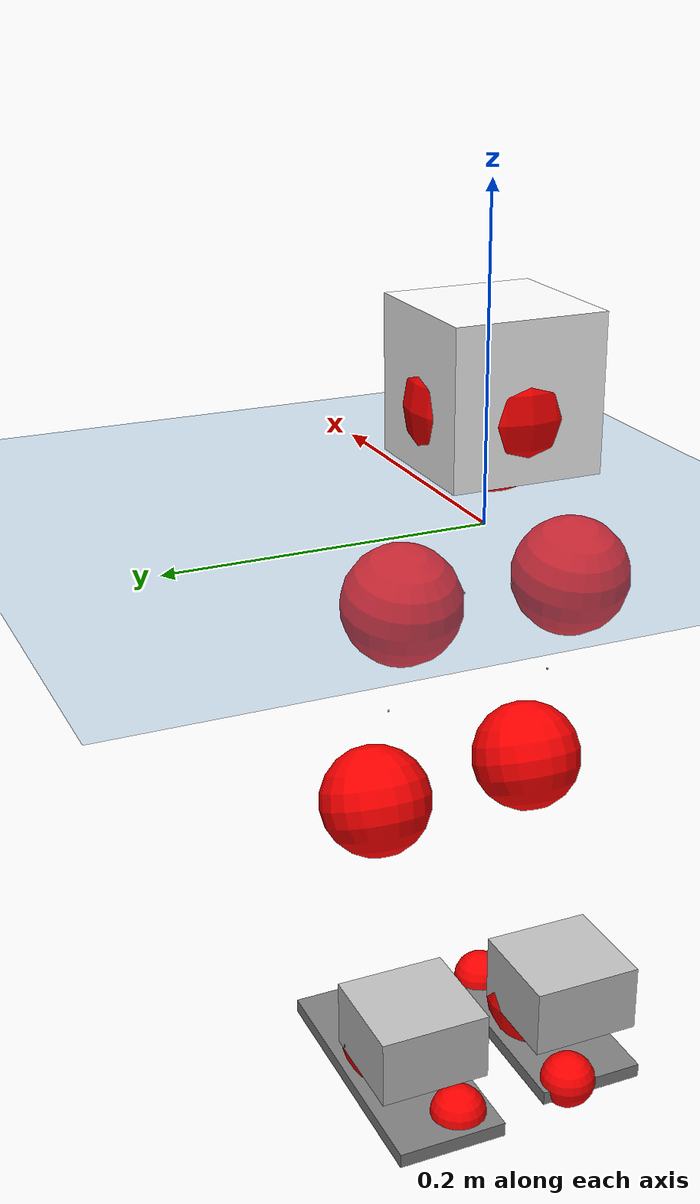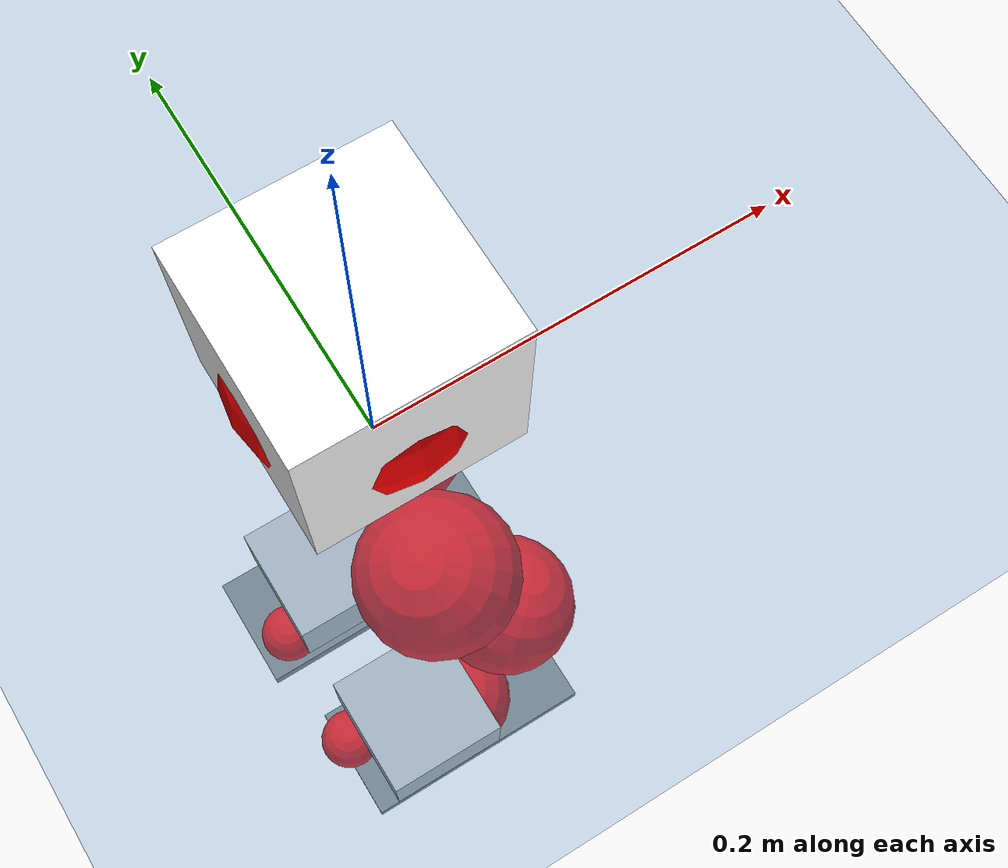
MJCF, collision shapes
<mujoco model="pi_12dof_release_v1">
  <compiler angle="radian" assetdir="assets" balanceinertia="true" inertiafromgeom="false"/>

  <option timestep="0.005" density="1.2" viscosity="2e-05"/>

  <size nkey="1"/>

  <visual>
    <quality shadowsize="8192"/>
    <map shadowclip="0.5"/>
  </visual>

  <default>
    <default class="/">
      <joint armature="0.01" damping="0.01" frictionloss="0.01"/>
      <geom contype="0" conaffinity="0" group="1" solref="-1000 -80"/>
      <site size="0.01 0.005 0.005" group="5"/>
      <general forcelimited="true" biastype="affine" gainprm="20" biasprm="0 -20 -0.5"/>
      <default class="foot">
        <geom size="0.0845 0.036 0.005" type="box" condim="6" group="4" priority="1" friction="0.9 0.2 0.2" solimp="0.015 1 0.005"/>
      </default>
      <default class="reward_collision_sphere">
        <geom group="5" rgba="1 0 0 1"/>
      </default>
    </default>
  </default>

  <asset>
    <texture type="skybox" colorspace="auto" name="//unnamed_texture_0" builtin="gradient" rgb1="0.95 0.95 0.95" rgb2="0.95 0.95 0.95" width="100" height="600"/>
    <texture type="2d" colorspace="auto" name="texplane" builtin="checker" rgb1="0.345 0.575 0.748" rgb2="0.345 0.575 0.748" markrgb="1 1 1" width="512" height="512"/>
    <material name="MatPlane" class="/" texture="texplane" texuniform="true" texrepeat="2 2" specular="0.9"/>
    <mesh name="baselink_1" class="/" file="baselink_1.STL"/>
    <mesh name="r_hip_pitch_link" class="/" file="r_hip_pitch_link.STL"/>
    <mesh name="r_hip_roll_link" class="/" file="r_hip_roll_link.STL"/>
    <mesh name="r_thigh_link" class="/" file="r_thigh_link.STL"/>
    <mesh name="r_calf_link" class="/" file="r_calf_link.STL"/>
    <mesh name="r_ankle_pitch_link" class="/" file="r_ankle_pitch_link.STL"/>
    <mesh name="r_ankle_roll_link" class="/" file="r_ankle_roll_link.STL"/>
    <mesh name="l_hip_pitch_link" class="/" file="l_hip_pitch_link.STL"/>
    <mesh name="l_hip_roll_link" class="/" file="l_hip_roll_link.STL"/>
    <mesh name="l_thigh_link" class="/" file="l_thigh_link.STL"/>
    <mesh name="l_calf_link" class="/" file="l_calf_link.STL"/>
    <mesh name="l_ankle_pitch_link" class="/" file="l_ankle_pitch_link.STL"/>
    <mesh name="l_ankle_roll_link" class="/" file="l_ankle_roll_link.STL"/>
  </asset>

  <worldbody>
    <geom name="floor" class="/" size="100 100 0.125" type="plane" group="0" material="MatPlane"/>
    <light name="toplight_shadow" class="/" pos="0 0 5" dir="0.0990148 0.0990148 -0.990148" type="directional" ambient="0.04 0.04 0.04" diffuse="0.55 0.55 0.55" specular="0.12 0.12 0.12"/>
    <light name="toplight_fill" class="/" pos="0 0 5" dir="0.0990148 0.0990148 -0.990148" type="directional" castshadow="false" ambient="0.04 0.04 0.04" diffuse="0.3 0.3 0.3" specular="0.08 0.08 0.08"/>
    <body name="trunk" pos="-0.0027709 -0.00105866 -0.00197592" quat="0.999999 -0.000454874 -0.00108348 -0.000528606">
      <inertial pos="9.70811e-05 0.00129564 0.0436103" quat="0.6946 0.0149533 -0.00349531 0.719233" mass="1.74256" diaginertia="0.00799013 0.00186968 0.00705014"/>
      <joint name="//unnamed_joint_0" type="free"/>
      <geom name="//unnamed_geom_1" class="/" type="mesh" density="0" rgba="1 1 1 1" mesh="baselink_1"/>
      <geom name="//unnamed_geom_2" class="/" size="0.0465553 0.0465553 0.0465553" pos="0 0 0.0885791" type="box" rgba="1 1 1 1"/>
      <geom name="//unnamed_geom_3" class="reward_collision_sphere" size="0.0512109" pos="0 0 0.0775067"/>
      <site name="imu" class="/" pos="0.0112541 -0.00864937 -0.00413679" size="0.00931107"/>
      <camera name="track" class="/" pos="0 -1.45975 0" quat="0.707107 0.707107 0 0" mode="trackcom"/>
      <camera name="ego_camera" class="/" pos="0.0717155 0 0.199303" quat="-0.5 -0.5 0.5 0.5"/>
      <body name="r_hip_pitch_link" pos="-0.00077098 -0.0166649 -0.037771" quat="0.992276 -0.000150216 -0.124044 -0.000684492">
        <inertial pos="-0.00121091 -0.0405971 0.000295899" quat="-0.0155785 0.697057 -0.033729 0.716053" mass="0.308168" diaginertia="8.9359e-05 2.09464e-05 0.000146012"/>
        <joint name="r_hip_pitch_joint" class="/" pos="0 0 0" axis="0.000334988 -1 -0.000277111" range="-1.74055 1.22895" armature="0.00830511" damping="0.005766" frictionloss="0.0093273"/>
        <geom name="//unnamed_geom_4" class="/" type="mesh" density="0" rgba="0.75294 0.75294 0.75294 1" mesh="r_hip_pitch_link"/>
        <geom name="//unnamed_geom_5" class="/" size="0.000465553 0.000465553 0.000465553" type="box" rgba="0.75294 0.75294 0.75294 1"/>
        <body name="r_hip_roll_link" pos="-0.00135722 -0.0401533 -0.000115428" quat="1 6.39468e-05 0.000303787 0.000114268">
          <inertial pos="-0.00141921 -0.00251252 -0.0692702" quat="0.706269 -0.0788511 -0.0823226 0.698705" mass="0.315912" diaginertia="0.00026289 5.57868e-05 0.000210689"/>
          <joint name="r_hip_roll_joint" class="/" pos="0 0 0" axis="-0.999909 -0.0092101 0.00984636" range="-0.142759 0.54846" armature="0.00963607" damping="0.00798194" frictionloss="0.00908137"/>
          <geom name="//unnamed_geom_6" class="/" type="mesh" density="0" rgba="0.75294 0.75294 0.75294 1" mesh="r_hip_roll_link"/>
          <geom name="//unnamed_geom_7" class="/" size="0.000465553 0.000465553 0.000465553" type="box" rgba="0.75294 0.75294 0.75294 1"/>
          <geom name="//unnamed_geom_8" class="reward_collision_sphere" size="0.0372443"/>
          <body name="r_thigh_link" pos="0.00116723 0.00238105 -0.0737291" quat="1 0.000321008 0.000325597 -2.03425e-05">
            <inertial pos="0.000408664 -0.00168974 -0.0498978" quat="0.737699 0.675128 0.000436091 0.00117244" mass="0.0943264" diaginertia="0.000103876 1.98382e-05 9.65595e-05"/>
            <joint name="r_thigh_joint" class="/" pos="0 0 0" axis="-0.0143426 -0.00529763 -0.999883" stiffness="0.00807025" range="-0.299626 0.615329" armature="0.00886988" damping="0" frictionloss="0.00852276"/>
            <geom name="//unnamed_geom_9" class="/" type="mesh" density="0" rgba="0.75294 0.75294 0.75294 1" mesh="r_thigh_link"/>
            <geom name="//unnamed_geom_10" class="/" size="0.000465553 0.000465553 0.000465553" type="box" rgba="0.75294 0.75294 0.75294 1"/>
            <body name="r_calf_link" pos="0.0025043 0.0012494 -0.075635" quat="0.947651 1.71901e-05 0.319308 -4.47178e-05">
              <inertial pos="-0.000624602 -0.00334874 -0.076998" quat="0.999937 0.00448618 -0.00940256 0.00425612" mass="0.67733" diaginertia="0.00282017 0.000757833 0.000295546"/>
              <joint name="r_calf_joint" class="/" pos="0 0 0" axis="-0.00366954 -0.999993 -0.000447214" range="-1.60061 0.645743" armature="0.00789066" damping="0.00345332" frictionloss="0.00914817"/>
              <geom name="//unnamed_geom_11" class="/" type="mesh" density="0" rgba="0.75294 0.75294 0.75294 1" mesh="r_calf_link"/>
              <geom name="//unnamed_geom_12" class="/" size="0.000465553 0.000465553 0.000465553" type="box" rgba="0.75294 0.75294 0.75294 1"/>
              <geom name="//unnamed_geom_13" class="reward_collision_sphere" size="0.0372443"/>
              <body name="r_ankle_pitch_link" pos="0.00242528 2.36895e-05 -0.157432" quat="0.980093 0.000104169 -0.198537 0.000250556">
                <inertial pos="0.00397646 0.00263805 -0.00239419" quat="-0.00549746 0.705787 -0.00340883 0.708394" mass="0.146743" diaginertia="0.000246493 4.72003e-05 0.000204845"/>
                <joint name="r_ankle_pitch_joint" class="/" pos="0 0 0" axis="-0.00325955 -0.999994 -0.00128159" range="-1.30134 0.540211" armature="0.00939044" damping="0.00720996" frictionloss="0.0105605"/>
                <geom name="//unnamed_geom_14" class="/" type="mesh" density="0" rgba="0.75294 0.75294 0.75294 1" mesh="r_ankle_pitch_link"/>
                <geom name="//unnamed_geom_15" class="/" size="0.0363132 0.0372443 0.0232777" type="box" rgba="0.75294 0.75294 0.75294 1"/>
                <body name="r_ankle_roll_link" pos="0.0727018 0.00163036 -0.00135164" quat="1 -3.97759e-05 0.000353266 -0.000112781">
                  <inertial pos="-0.0233904 -9.04307e-05 -0.0144685" quat="0.55531 0.439044 0.437224 0.554713" mass="0.396027" diaginertia="0.000901274 0.000214191 0.000447499"/>
                  <joint name="r_ankle_roll_joint" class="/" pos="0 0 0" axis="-0.999915 -0.000619205 0.0130146" range="-0.0972532 0.0973575" armature="0.00819039" damping="0.021926" frictionloss="0.00826861"/>
                  <geom name="//unnamed_geom_16" class="/" type="mesh" density="0" rgba="0.75294 0.75294 0.75294 1" mesh="r_ankle_roll_link"/>
                  <geom name="//unnamed_geom_17" class="/" type="mesh" rgba="0.75294 0.75294 0.75294 1" mesh="r_ankle_roll_link"/>
                  <geom name="right_foot" class="foot" size="0.0727753 0.0361947 0.00476253" pos="-0.0487665 0 -0.0487185"/>
                  <geom name="//unnamed_geom_19" class="reward_collision_sphere" size="0.0372443" pos="-0.0478103 0 -0.0221448"/>
                  <geom name="//unnamed_geom_20" class="reward_collision_sphere" size="0.0186221" pos="0.0143431 0.0145975 -0.0442895"/>
                  <geom name="//unnamed_geom_21" class="reward_collision_sphere" size="0.0186221" pos="-0.114745 0.0145975 -0.0442895"/>
                  <site name="right_foot" class="foot" pos="-0.0487665 0 -0.0487185" size="0.00931107"/>
                </body>
              </body>
            </body>
          </body>
        </body>
      </body>
      <body name="l_hip_pitch_link" pos="0.000129106 0.0152272 -0.0386044" quat="0.99219 -0.000357496 -0.124733 -0.000288083">
        <inertial pos="0.000744703 0.0404295 -0.00273375" quat="-0.0334552 0.706621 0.0302933 0.706152" mass="0.328765" diaginertia="0.000107469 2.13195e-05 0.000168179"/>
        <joint name="l_hip_pitch_joint" class="/" pos="0 0 0" axis="0.0032264 0.999962 0.00808278" range="-1.19072 1.73575" armature="0.0106975" damping="0.00522091" frictionloss="0.00979321"/>
        <geom name="//unnamed_geom_22" class="/" type="mesh" density="0" rgba="0.75294 0.75294 0.75294 1" mesh="l_hip_pitch_link"/>
        <geom name="//unnamed_geom_23" class="/" size="0.000465553 0.000465553 0.000465553" type="box" rgba="0.75294 0.75294 0.75294 1"/>
        <body name="l_hip_roll_link" pos="-0.000348059 0.0411326 -0.000439907" quat="1 0.000120731 0.000293975 0.00019607">
          <inertial pos="-0.00414287 -0.0010705 -0.0691149" quat="0.698766 -0.0832211 -0.0678245 0.707248" mass="0.32238" diaginertia="0.000262888 5.86072e-05 0.000210608"/>
          <joint name="l_hip_roll_joint" class="/" pos="0 0 0" axis="-0.999995 -0.00252463 0.0021121" stiffness="0.000940393" range="-0.546468 0.173113" armature="0.00838408" damping="0.000541095" frictionloss="0.00935194"/>
          <geom name="//unnamed_geom_24" class="/" type="mesh" density="0" rgba="0.75294 0.75294 0.75294 1" mesh="l_hip_roll_link"/>
          <geom name="//unnamed_geom_25" class="/" size="0.000465553 0.000465553 0.000465553" type="box" rgba="0.75294 0.75294 0.75294 1"/>
          <geom name="//unnamed_geom_26" class="reward_collision_sphere" size="0.0372443"/>
          <body name="l_thigh_link" pos="-0.00265488 0.00111164 -0.0795632" quat="1 -0.000121799 1.70686e-05 -0.000123509">
            <inertial pos="0.00251238 -0.00392927 -0.0499029" quat="0.679564 0.733504 -0.0123695 0.00334227" mass="0.0879716" diaginertia="0.00010034 1.99414e-05 9.57583e-05"/>
            <joint name="l_thigh_joint" class="/" pos="0 0 0" axis="0.000393938 -7.59893e-05 -1" range="-0.593126 0.256283" armature="0.00926965" damping="0.000987691" frictionloss="0.00980702"/>
            <geom name="//unnamed_geom_27" class="/" type="mesh" density="0" rgba="0.75294 0.75294 0.75294 1" mesh="l_thigh_link"/>
            <geom name="//unnamed_geom_28" class="/" size="0.000465553 0.000465553 0.000465553" type="box" rgba="0.75294 0.75294 0.75294 1"/>
            <body name="l_calf_link" pos="0.00108289 0.000280534 -0.0766503" quat="0.947659 0.000263489 0.319283 -8.2696e-05">
              <inertial pos="0.000625366 0.00485658 -0.0803586" quat="0.999983 0.00323589 -0.000852575 0.00480903" mass="0.652443" diaginertia="0.00277706 0.000713775 0.000283487"/>
              <joint name="l_calf_joint" class="/" pos="0 0 0" axis="-0.000641136 0.999995 0.00294454" range="-0.611824 1.70302" armature="0.00939016" damping="0.00885206" frictionloss="0.00959308"/>
              <geom name="//unnamed_geom_29" class="/" type="mesh" density="0" rgba="0.75294 0.75294 0.75294 1" mesh="l_calf_link"/>
              <geom name="//unnamed_geom_30" class="/" size="0.000465553 0.000465553 0.000465553" type="box" rgba="0.75294 0.75294 0.75294 1"/>
              <geom name="//unnamed_geom_31" class="reward_collision_sphere" size="0.0372443"/>
              <body name="l_ankle_pitch_link" pos="0.000325243 0.000622113 -0.152795" quat="0.980086 0.000172467 -0.198575 -0.000223583">
                <inertial pos="0.00205839 0.00208688 0.000307695" quat="-0.00305676 0.706554 0.00130237 0.707651" mass="0.13228" diaginertia="0.000242249 4.48675e-05 0.000199176"/>
                <joint name="l_ankle_pitch_joint" class="/" pos="0 0 0" axis="-0.00137336 0.999993 -0.0033873" stiffness="0.000207617" range="-0.554921 1.31941" armature="0.00810235" damping="0.013832" frictionloss="0.00905415"/>
                <geom name="//unnamed_geom_32" class="/" type="mesh" density="0" rgba="0.75294 0.75294 0.75294 1" mesh="l_ankle_pitch_link"/>
                <geom name="//unnamed_geom_33" class="/" size="0.0363132 0.0372443 0.0232777" type="box" rgba="0.75294 0.75294 0.75294 1"/>
                <body name="l_ankle_roll_link" pos="0.0744174 0.000238528 0.00208693" quat="1 -9.79043e-05 -0.000442036 0.00011037">
                  <inertial pos="-0.0229458 -0.000101493 -0.0162729" quat="0.556007 0.433032 0.436596 0.559216" mass="0.390453" diaginertia="0.000881347 0.00020867 0.000452472"/>
                  <joint name="l_ankle_roll_joint" class="/" pos="0 0 0" axis="-1 9.68284e-05 -0.000355415" range="-0.145351 0.152237" armature="0.0106715" damping="0.00833734" frictionloss="0.00927263"/>
                  <geom name="//unnamed_geom_34" class="/" type="mesh" density="0" rgba="0.75294 0.75294 0.75294 1" mesh="l_ankle_roll_link"/>
                  <geom name="//unnamed_geom_35" class="/" type="mesh" rgba="0.75294 0.75294 0.75294 1" mesh="l_ankle_roll_link"/>
                  <geom name="left_foot" class="foot" size="0.0889561 0.0369537 0.00495714" pos="-0.0487665 0 -0.0487185"/>
                  <geom name="//unnamed_geom_37" class="reward_collision_sphere" size="0.0372443" pos="-0.0478103 0 -0.0221448"/>
                  <geom name="//unnamed_geom_38" class="reward_collision_sphere" size="0.0186221" pos="0.0143431 -0.0145975 -0.0442895"/>
                  <geom name="//unnamed_geom_39" class="reward_collision_sphere" size="0.0186221" pos="-0.114745 -0.0145975 -0.0442895"/>
                  <site name="left_foot" class="foot" pos="-0.0487665 0 -0.0487185" size="0.00931107"/>
                </body>
              </body>
            </body>
          </body>
        </body>
      </body>
    </body>
  </worldbody>

  <contact>
    <pair class="/" geom1="floor" geom2="right_foot" name="//unnamed_contact_1"/>
    <pair class="/" geom1="floor" geom2="left_foot" name="//unnamed_contact_0"/>
  </contact>

  <actuator>
    <general name="r_hip_pitch_joint" class="/" joint="r_hip_pitch_joint" forcerange="-19.6123 19.6123" gainprm="18.4376" biasprm="0 -18.4376 -0.447409"/>
    <general name="r_hip_roll_joint" class="/" joint="r_hip_roll_joint" forcerange="-17.6417 17.6417" gainprm="18.4376" biasprm="0 -18.4376 -0.447409"/>
    <general name="r_thigh_joint" class="/" joint="r_thigh_joint" forcerange="-21.1619 21.1619" gainprm="18.4376" biasprm="0 -18.4376 -0.447409"/>
    <general name="r_calf_joint" class="/" joint="r_calf_joint" forcerange="-19.1524 19.1524" gainprm="18.4376" biasprm="0 -18.4376 -0.447409"/>
    <general name="r_ankle_pitch_joint" class="/" joint="r_ankle_pitch_joint" forcerange="-20.1564 20.1564" gainprm="18.4376" biasprm="0 -18.4376 -0.447409"/>
    <general name="r_ankle_roll_joint" class="/" joint="r_ankle_roll_joint" forcerange="-21.121 21.121" gainprm="18.4376" biasprm="0 -18.4376 -0.447409"/>
    <general name="l_hip_pitch_joint" class="/" joint="l_hip_pitch_joint" forcerange="-18.9227 18.9227" gainprm="18.4376" biasprm="0 -18.4376 -0.447409"/>
    <general name="l_hip_roll_joint" class="/" joint="l_hip_roll_joint" forcerange="-21.5859 21.5859" gainprm="18.4376" biasprm="0 -18.4376 -0.447409"/>
    <general name="l_thigh_joint" class="/" joint="l_thigh_joint" forcerange="-17.7074 17.7074" gainprm="18.4376" biasprm="0 -18.4376 -0.447409"/>
    <general name="l_calf_joint" class="/" joint="l_calf_joint" forcerange="-18.835 18.835" gainprm="18.4376" biasprm="0 -18.4376 -0.447409"/>
    <general name="l_ankle_pitch_joint" class="/" joint="l_ankle_pitch_joint" forcerange="-21.3358 21.3358" gainprm="18.4376" biasprm="0 -18.4376 -0.447409"/>
    <general name="l_ankle_roll_joint" class="/" joint="l_ankle_roll_joint" forcerange="-20.6898 20.6898" gainprm="18.4376" biasprm="0 -18.4376 -0.447409"/>
  </actuator>

  <sensor>
    <gyro site="imu" name="imu_angular_velocity"/>
    <velocimeter site="imu" name="imu_linear_velocity"/>
    <framelinvel objtype="site" objname="left_foot" name="left_foot_global_linear_velocity"/>
    <framelinvel objtype="site" objname="right_foot" name="right_foot_global_linear_velocity"/>
  </sensor>

  <keyframe>
    <key name="home" qpos="0 0 0.291 1 0 0 0 0.4 0 0 -0.8 0.4 0 -0.4 0 0 0.8 -0.4 0"/>
  </keyframe>
</mujoco>
